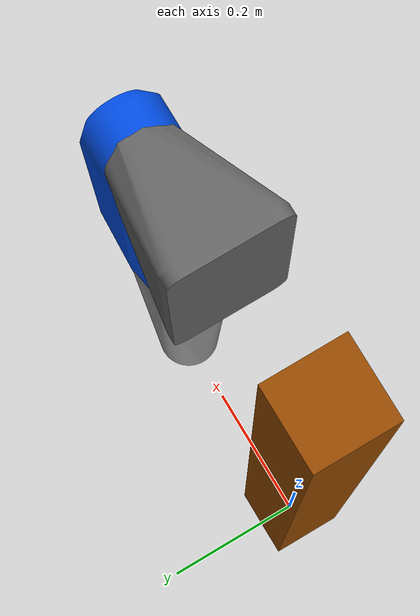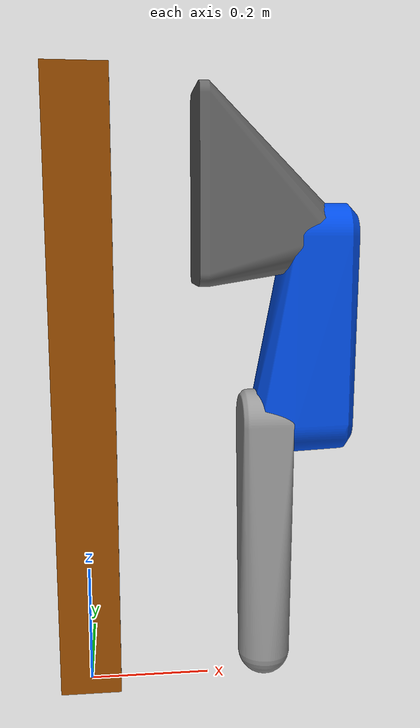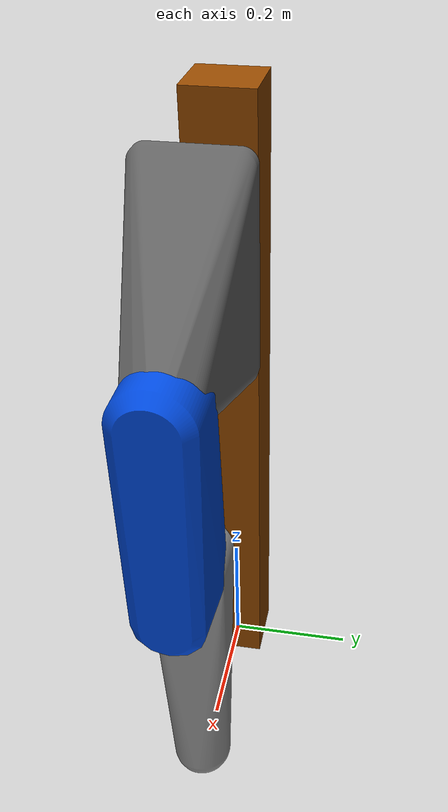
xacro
<?xml version="1.0"?>

<robot name="awesome_leg" xmlns:xacro="http://www.ros.org/wiki/xacro">

    <xacro:include filename="$(find awesome_leg)/description/urdf/utils.urdf.xacro"/>
    <xacro:include filename="$(find awesome_leg)/description/urdf/awesome_leg.xbot.xacro"/>
    <xacro:include filename="$(find awesome_leg)/description/urdf/awesome_leg.urdf.xacro"/>
    <xacro:include filename="$(find awesome_leg)/description/urdf/test_rig.gazebo.xacro"/>

    <xacro:arg name="sliding_guide" default="true" />
    <xacro:arg name="add_ft_sensor" default="false" />

    <xacro:arg name="dump_video_frames" default="false" />

    <xacro:property name="test_rig_base_ext" value="0.1" />
    <xacro:property name="test_rig_height" value="1.0" />
    <xacro:property name="hip_mounting_offset" value="0.08" />

    <xacro:if value="$(arg sliding_guide)">

        <xacro:property name="pelvis_mounting_height" value="0.25" />

    </xacro:if>

    <xacro:unless value="$(arg sliding_guide)">

        <xacro:property name="pelvis_mounting_height" value="0.4" />

    </xacro:unless>

    <link name="world" />

    <joint name="world_test_rig" type="fixed">
        <parent link="world" />
        <child link="test_rig" />
        <origin xyz="0 0 ${test_rig_height / 2}" />
    </joint>

    <link name="test_rig">

        <visual>
            <origin rpy="0 0 0" xyz="0 0 0" />
            <geometry>
                <box size="${test_rig_base_ext} ${test_rig_base_ext} ${test_rig_height}" />
            </geometry>
            <material name="brown"/>
        </visual>

        <inertial>
            <mass value="1000.0" />
            <inertia ixx="0.01" iyy="0.01" izz="0.01" ixy="0.0" ixz="0.0" iyz="0.0" />
        </inertial>

    </link>

    <xacro:if value="$(arg sliding_guide)">

        <joint name="test_rig2base" type="prismatic">
            <parent link="test_rig" />
            <child link="base_link" />
            <origin xyz="${test_rig_base_ext + hip_mounting_offset} 0 ${pelvis_mounting_height}" rpy="0.0 0.0 ${-PI_2}"/>
            <axis xyz="0 0 1" />
            <dynamics damping="${sliding_guide_dyn_friction}" friction="${sliding_guide_static_friction}" />
            <limit lower="-10" upper="10.0" effort="500" velocity="50.0" />
        </joint>

    </xacro:if>

    <xacro:unless value="$(arg sliding_guide)">

        <joint name="test_rig2base" type="fixed">
            <parent link="test_rig" />
            <child link="base_link" />
            <origin xyz="${test_rig_base_ext + hip_mounting_offset} 0 ${pelvis_mounting_height}" rpy="0.0 0.0 ${-PI_2}"/>
        </joint>

    </xacro:unless>

    <link name="base_link">
        <visual name="base_link_visual">
            <origin xyz="0.0 0.0 0.0" rpy="0.0 0.0 0.0"/>
            <geometry>
                <mesh filename="package://awesome_leg/description/new_meshes/visual/base.stl" scale="${dmTom} ${dmTom} ${dmTom}"/>
            </geometry>
            <material name="black"/>
        </visual>
        <collision>
            <origin xyz="0 0 0" rpy="0.0 0.0 0.0"/>
            <geometry>
                <mesh filename="package://awesome_leg/description/new_meshes/collision/base.stl" scale="${dmTom} ${dmTom} ${dmTom}"/>
            </geometry>
        </collision>
        <inertial>
            <origin rpy="${0 * DEG2RAD} ${0 * DEG2RAD} ${0 * DEG2RAD}" xyz="${-6.0548104e-03 * mmTom} ${8.2902397e+01 * mmTom} ${6.0505209e+01 * mmTom}"/>
            <mass value="${7.3800519 + payload_mass}" />
            <inertia ixx="${4.4624842e+04 * kgmm2_2_kgm2}" iyy="${2.6977590e+04 * kgmm2_2_kgm2}" izz="${2.7956754e+04 * kgmm2_2_kgm2}"
                    ixy="${-1.4644878e+01 * kgmm2_2_kgm2}" ixz="${3.0225947e+01 * kgmm2_2_kgm2}" iyz="${9.6636358e+03 * kgmm2_2_kgm2}" />
        </inertial>
    </link>

    <xacro:awesome_leg id="1" base_link="base_link" add_ft_sensor="$(arg add_ft_sensor)"/>

</robot>

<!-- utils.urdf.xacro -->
<robot xmlns:xacro="http://ros.org/wiki/xacro">

<!-- scale -->
<xacro:property name="mmTom" value="0.001" />
<xacro:property name="dmTom" value="0.1" />
<xacro:property name="mm2Tom2" value="${0.001*0.001}" />
<xacro:property name="tonsToKg" value="1000.0" />
<xacro:property name="kgmm2_2_kgm2" value="${1e-06}" />

<xacro:property name="PI" value="3.14159265359" />
<xacro:property name="PI_2" value="1.57079632679" />
<xacro:property name="PI_4" value="0.7853981633974483" />
<xacro:property name="DEG2RAD" value="${PI/180.0}" />

<xacro:property name="sliding_guide_static_friction" value="0.0" />
<xacro:property name="sliding_guide_dyn_friction" value="0.0" />

<xacro:property name="payload_mass" value="${0.0}" />

<xacro:property name="camera_height" value="0.5" />
<xacro:property name="camera_depth" value="1.0" />

<xacro:property name="fts_sphere_radius" value="0.001" />
<xacro:property name="fts_delta" value="0.000" />
<xacro:property name="aux_mass_tip" value="0.01" />

<!-- color -->
<material name="darkblue">
    <color rgba="0.0 0.3 0.9 1"/>
</material>

<material name="dark">
    <color rgba="0.6 0.6 0.6 1"/>
</material>

<material name="sky_blue">
        <color rgba="0.13 0.44 0.70 1"/>
</material>
<material name="grey">
    <color rgba=" 0.6 0.6 0.6 1"/>
</material>
<material name="black">
    <color rgba="0.4 0.4 0.4 1"/>
</material>
<material name="brown">
    <color rgba="0.59 0.29 0.0 1"/>
</material>

<xacro:macro name="fake_inertial">
    <inertial>
        <mass value="0.1"/>
        <inertia ixx="0.0001" ixy="0" ixz="0" iyy="0.0001" iyz="0" izz="0.0001"/>
        <origin xyz="0 0 0"/>
    </inertial>
</xacro:macro>

</robot>

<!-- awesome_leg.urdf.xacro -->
<robot name="awesome_leg" xmlns:xacro="http://www.ros.org/wiki/xacro">

    <xacro:include filename="$(find awesome_leg)/description/urdf/awesome_leg.gazebo.xacro" />

    <xacro:macro name="awesome_leg" params="id base_link add_ft_sensor" >

        <xacro:awesome_leg_gazebo id="${id}" add_ft_sensor="${add_ft_sensor}"/>

        <xacro:unless value="${ base_link=='None' or base_link=='none'}">
            <!-- only add joint to base if argument is non-empty -->
            <joint name="hip_pitch_${id}" type="revolute">
                <parent link="${base_link}" />
                <child link="femur${id}" />
                <axis xyz="0 1 0"/>
                <origin xyz="0 ${214.6 * mmTom} 0" />
                <limit effort="112" lower="-2.4" upper="2.4" velocity="20.0"/>
            </joint>

        </xacro:unless>

        <link name="femur${id}">
            <inertial>
                <origin rpy="${0 * DEG2RAD} ${0 * DEG2RAD} ${0 * DEG2RAD}" xyz="${-1.7807105e-02 * mmTom} ${-3.4271947e+01 * mmTom} ${-2.2282064e+02 * mmTom}"/>
                <mass value="3.3712777"/>
                <inertia ixx="${4.6647423e+04 * kgmm2_2_kgm2}" iyy="${4.3720135e+04 * kgmm2_2_kgm2}" izz="${7.5794813e+04 * kgmm2_2_kgm2}"
                    ixy="${-1.2697640e+01 * kgmm2_2_kgm2}" ixz="${-3.2745810e+01 * kgmm2_2_kgm2}" iyz="${-6.3299091e+04 * kgmm2_2_kgm2}" />
            </inertial>
            <visual>
                <origin rpy="0.0 0.0 0.0" xyz="0.0 0.0 0.0"/>
                <geometry>
                    <mesh filename="package://awesome_leg/description/new_meshes/visual/femur.stl" scale="${dmTom} ${dmTom} ${dmTom}"/>
                </geometry>
                <material name="darkblue"/>
            </visual>
            <collision>
                <origin rpy="0.0 0.0 0.0" xyz="0.0 0.0 0.0"/>
                <geometry>
                    <mesh filename="package://awesome_leg/description/new_meshes/collision/femur.stl" scale="${dmTom} ${dmTom} ${dmTom}"/>
                </geometry>
            </collision>
        </link>

        <joint name="knee_pitch_${id}" type="revolute">
            <parent link="femur${id}"/>
            <child link="shin${id}"/>
            <origin rpy="0.0 0.0 0.0" xyz="0.0 ${-118.2 * mmTom} ${-300.0 * mmTom}"/>
            <axis xyz="0 -1 0"/>
            <limit effort="112" lower="-2.4" upper="2.4" velocity="20.0"/>
        </joint>

        <link name="shin${id}">
            <inertial>
                <origin rpy="${0.0 * DEG2RAD} ${0.0 * DEG2RAD} ${0 * DEG2RAD}" xyz="${9.2284672e-04 * mmTom} ${1.759883e+01 * mmTom} ${-1.8730054e+02 * mmTom}"/>
                <mass value="1.3106594"/>
                <inertia ixx="${4.0133965e+04 * kgmm2_2_kgm2}" iyy="${4.0269285e+04 * kgmm2_2_kgm2}" izz="${1.5274496e+03 * kgmm2_2_kgm2}"
                    ixy="${4.6219082e-02 * kgmm2_2_kgm2}" ixz="${-3.0432320e-01 * kgmm2_2_kgm2}" iyz="${1.3816329e+03 * kgmm2_2_kgm2}" />
            </inertial>
            <visual>
                <origin rpy="0.0 0.0 0.0" xyz="0.0 0.0 0.0"/>
                <geometry>
                    <mesh filename="package://awesome_leg/description/new_meshes/visual/shin.stl" scale="${dmTom} ${dmTom} ${dmTom}"/>
                </geometry>
                <material name="grey"/>
            </visual>

            <xacro:unless value="${ add_ft_sensor == True}">
                <collision>
                    <origin rpy="0.0 0.0 0.0" xyz="0.0 0.0 0.0"/>
                    <geometry>
                        <mesh filename="package://awesome_leg/description/new_meshes/collision/shin.stl" scale="${dmTom} ${dmTom} ${dmTom}"/>
                    </geometry>
                </collision>
            </xacro:unless>

        </link>

        <xacro:unless value="${ add_ft_sensor == True}">

            <joint name="tip_joint_${id}" type="fixed">
                <parent link="shin${id}"/>
                <child link="tip${id}"/>
                <origin xyz="0.0 ${23.3000 * mmTom} ${-451 * mmTom}"/>
            </joint>

            <link name="tip${id}"/>

        </xacro:unless>

        <xacro:if value="${ add_ft_sensor == True}">

            <joint name="tip_joint_${id}" type="prismatic">
                <parent link="shin${id}"/>
                <child link="tip${id}"/>
                <origin xyz="0.0 ${23.3000 * mmTom} ${-451 * mmTom}"/>
                <limit effort="0" lower="0.0" upper="0.0" velocity="0.0"/>
                <axis  xyz="0 0 1"/>
            </joint>
            <link name="tip${id}">
                    <origin xyz="0.0 0.0 0.0"/>
                    <inertial>
                        <origin xyz="0.0 0.0 0.0"/>
                        <mass value="${aux_mass_tip}"/> <!-- fake inertial value, otherwise Gazebo throws errors  -->
                        <inertia ixx="0" iyy="0" izz="0"
                            ixy="0" ixz="0" iyz="0" />
                    </inertial>
                    <collision>
                        <origin rpy="0.0 0.0 0.0" xyz="0.0 0.0 ${fts_sphere_radius - fts_delta}"/>
                        <geometry>
                            <sphere radius="${fts_sphere_radius}"/>
                        </geometry>
                        <max_contacts> 1 </max_contacts>
                    </collision>

            </link>

        </xacro:if>

    </xacro:macro>

</robot>
